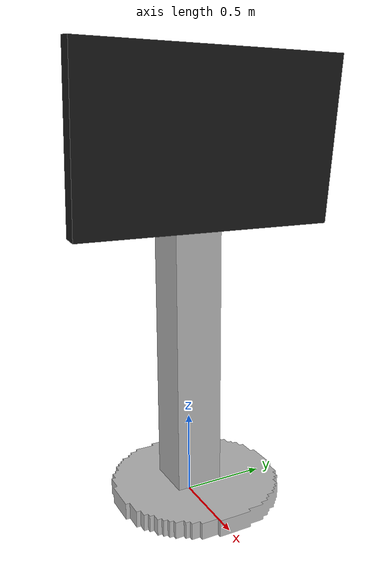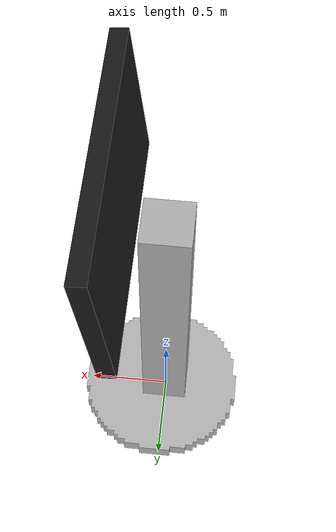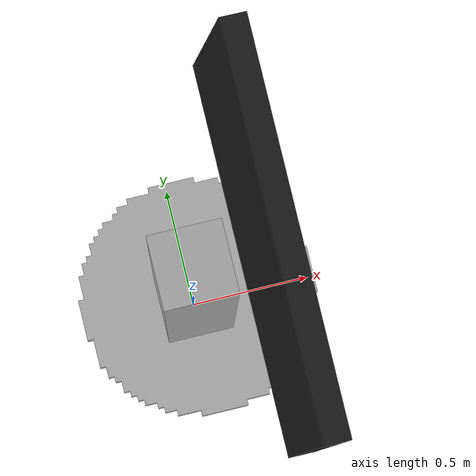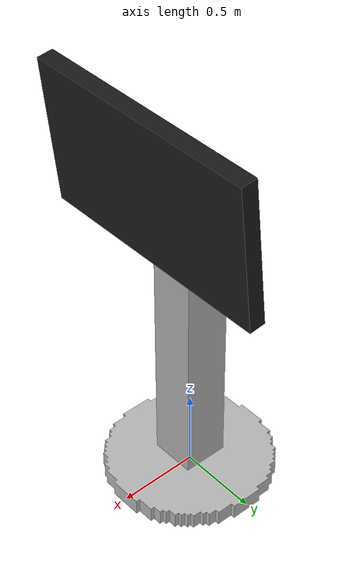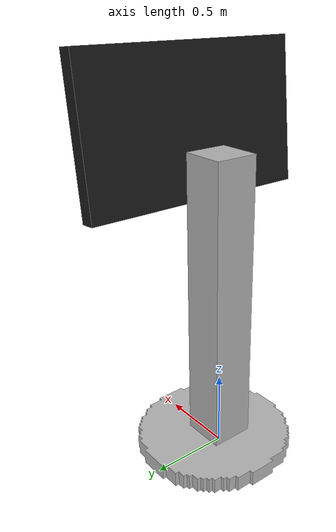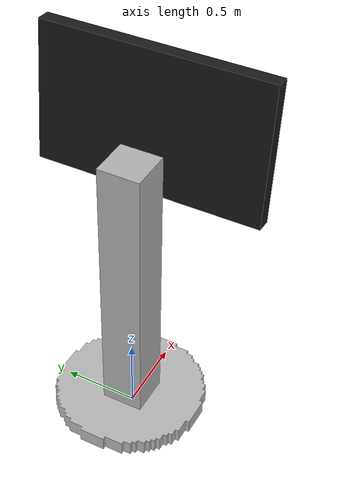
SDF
<?xml version="1.0"?>
<sdf version="1.6">
  <world name="rwc2015/old/tv">
    <light name="sun" type="directional">
      <direction>0.5 0.1 -0.9</direction>
      <pose>0 0 10 0 0 0</pose>
      <specular>0.2 0.2 0.2 1</specular>
      <cast_shadows>true</cast_shadows>
      <diffuse>0.8 0.8 0.8 1</diffuse>
      <attenuation>
        <range>1000</range>
        <quadratic>0.001</quadratic>
        <constant>0.9</constant>
        <linear>0.01</linear>
      </attenuation>
    </light>
    <include>
      <pose>0 0 0 0 0 0</pose>
      <name>foot</name>
      <uri>model://rwc2015/tv/foot</uri>
    </include>
    <include>
      <pose>0 0 0 0 0 0</pose>
      <name>pole</name>
      <uri>model://rwc2015/tv/pole</uri>
    </include>
    <include>
      <pose>0.23 0 1.67 0 0.1 0</pose>
      <name>tv</name>
      <uri>model://rwc2015/tv/tv</uri>
    </include>
    <physics type="ode">
      <real_time_update_rate>333.0</real_time_update_rate>
      <max_step_size>0.003</max_step_size>
      <ode>
        <constraints>
          <cfm>0.0001</cfm>
        </constraints>
        <solver>
          <type>quick</type>
          <iters>100</iters>
        </solver>
      </ode>
    </physics>
  </world>
</sdf>

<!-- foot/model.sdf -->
<sdf version="1.6">
  <model name="rwc2015/old/tv/foot">
    <link name="1_link">
      <collision name="1_col">
        <geometry>
          <mesh>
            <uri>model://rwc2015/old/tv/foot/shape/disc.stl</uri>
          </mesh>
        </geometry>
      </collision>
      <visual name="1_vis">
        <geometry>
          <mesh>
            <uri>model://rwc2015/old/tv/foot/shape/disc.stl</uri>
          </mesh>
        </geometry>
      </visual>
      <pose>0 0 0 0 0 0</pose>
    </link>
    <static>true</static>
  </model>
</sdf>

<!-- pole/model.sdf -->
<sdf version="1.6">
  <model name="rwc2015/old/tv/pole">
    <link name="1_link">
      <collision name="1_col">
        <geometry>
          <box>
            <size>0.28 0.28 2.0</size>
          </box>
        </geometry>
      </collision>
      <visual name="1_vis">
        <geometry>
          <box>
            <size>0.28 0.28 2.0</size>
          </box>
        </geometry>
        <material>
          <ambient>0.7 0.7 0.7 1</ambient>
        </material>
      </visual>
      <pose>0.0 0.0 1.0 0 0 0</pose>
    </link>
    <static>true</static>
  </model>
</sdf>

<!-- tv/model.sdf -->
<sdf version="1.6">
  <model name="rwc2015/old/tv/tv">
    <link name="1_link">
      <collision name="1_col">
        <geometry>
          <box>
            <size>0.1 1.5 0.92</size>
          </box>
        </geometry>
      </collision>
      <visual name="1_vis">
        <geometry>
          <box>
            <size>0.1 1.5 0.92</size>
          </box>
        </geometry>
        <material>
          <ambient>0.1 0.1 0.1 1</ambient>
        </material>
      </visual>
      <pose>0.0 0.0 0.46 0 0 0</pose>
    </link>
    <static>true</static>
  </model>
</sdf>
